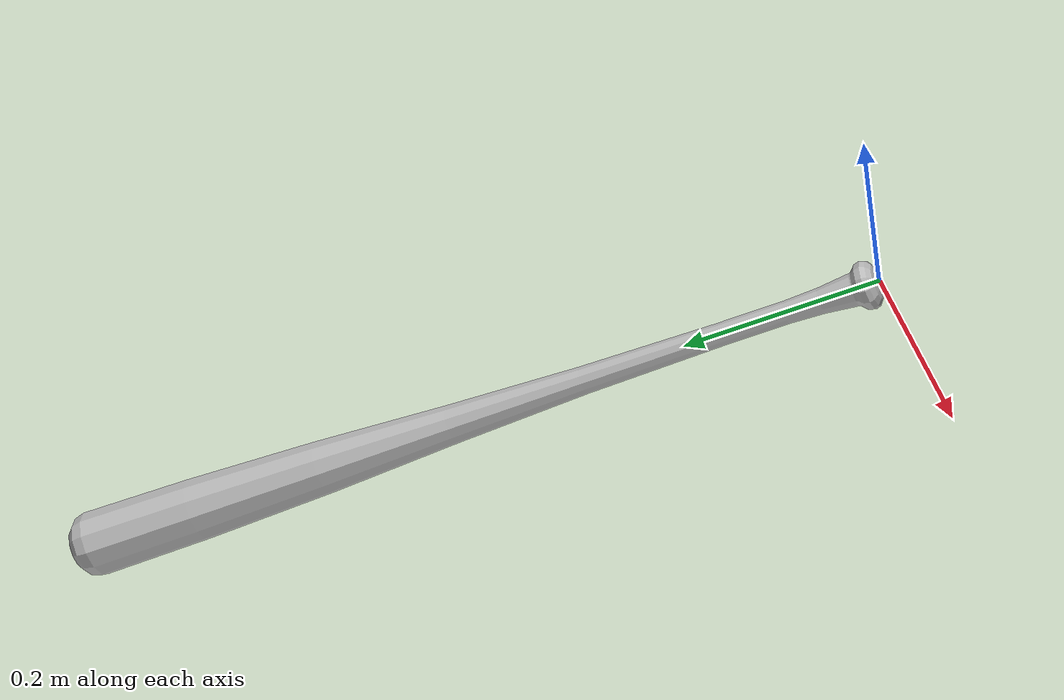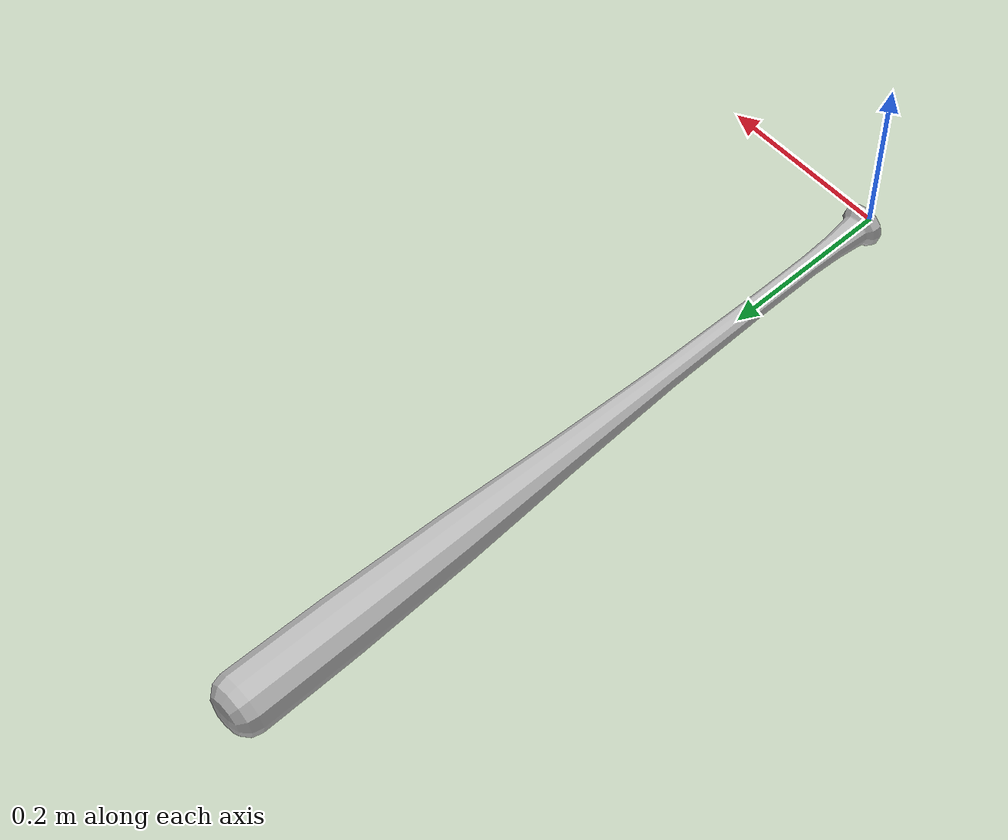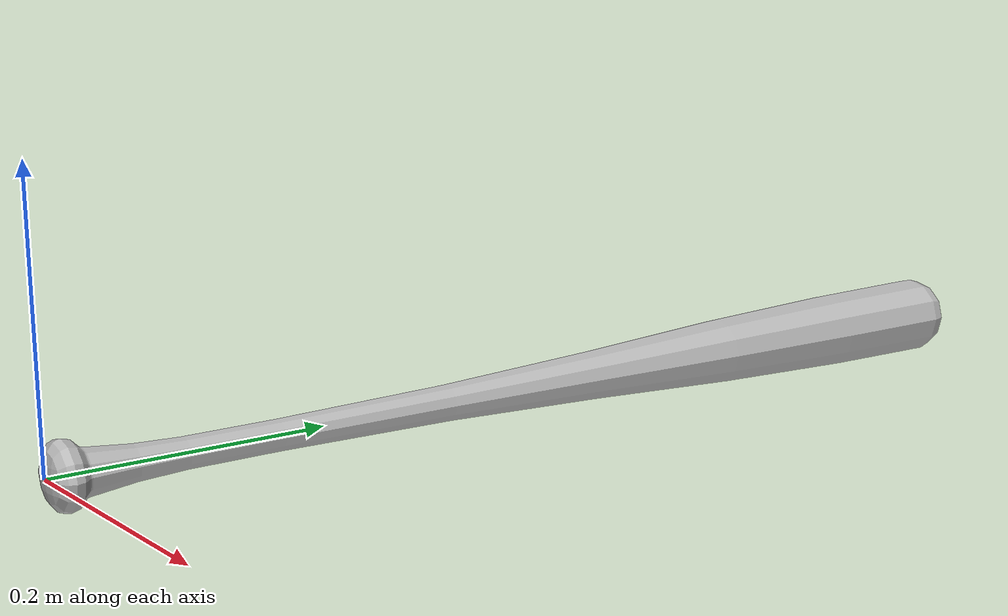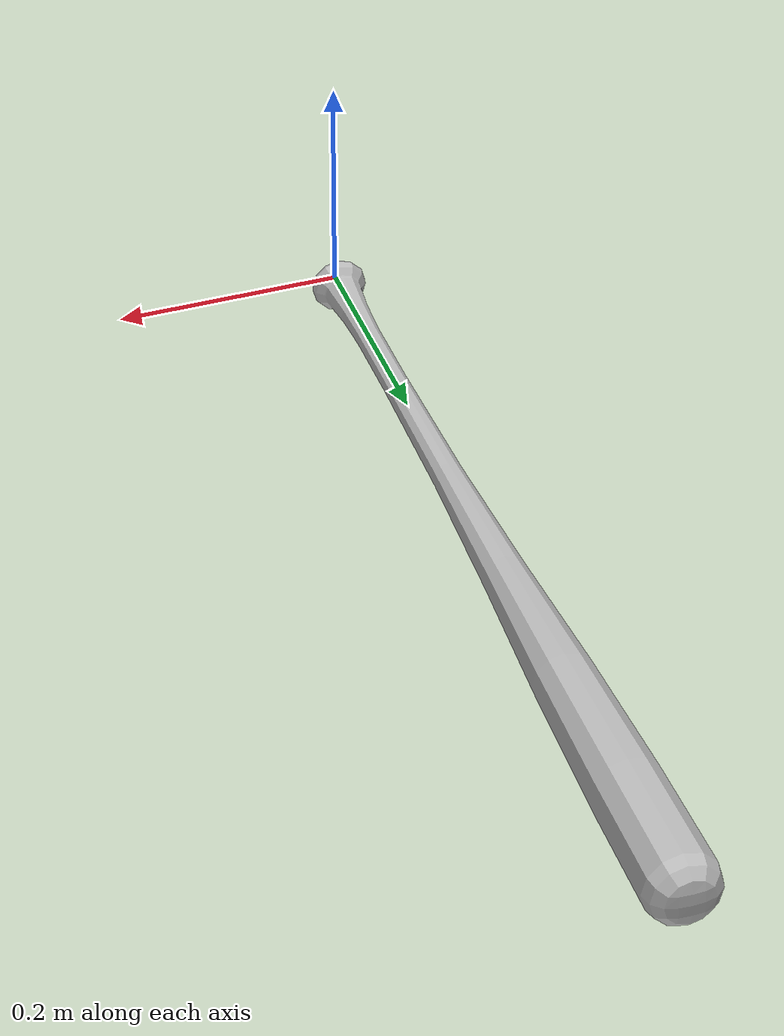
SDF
<?xml version="1.0"?>
<sdf version="1.6">
  <model name="bat">
    <link name="bat_link">
      <visual name="bat_visual">
        <geometry>
          <mesh>
            <uri>bat.obj</uri>
            <scale>0.01 0.01 0.01</scale>
          </mesh>
        </geometry>
      </visual>

      <collision name="bat_collision">
        <geometry>
          <mesh>
            <uri>bat.obj</uri>
            <scale>0.01 0.01 0.01</scale>
          </mesh>
        </geometry>
        <drake:proximity_properties>
          <drake:rigid_hydroelastic/>
          <drake:mesh_resolution_hint>0.01</drake:mesh_resolution_hint>
          <drake:hunt_crossley_dissipation>0.1</drake:hunt_crossley_dissipation>
          <drake:point_contact_stiffness>1e11</drake:point_contact_stiffness>
          <drake:hydroelastic_modulus>1e11</drake:hydroelastic_modulus>
        </drake:proximity_properties>
        <surface>
          <friction>
            <ode>
              <mu>10.0</mu>
              <mu2>10.0</mu2>
            </ode>
          </friction>
        </surface>
      </collision>
      <inertial>
        <pose>0.40 0 0 0 0 0</pose>
        <mass>1.0</mass>
        <inertia>
          <ixx>0.000613</ixx>
          <iyy>0.0837</iyy>
          <izz>0.0837</izz>
          <ixy>0</ixy>
          <ixz>0</ixz>
          <iyz>0</iyz>
        </inertia>
      </inertial>
    </link>
  </model>
</sdf>
